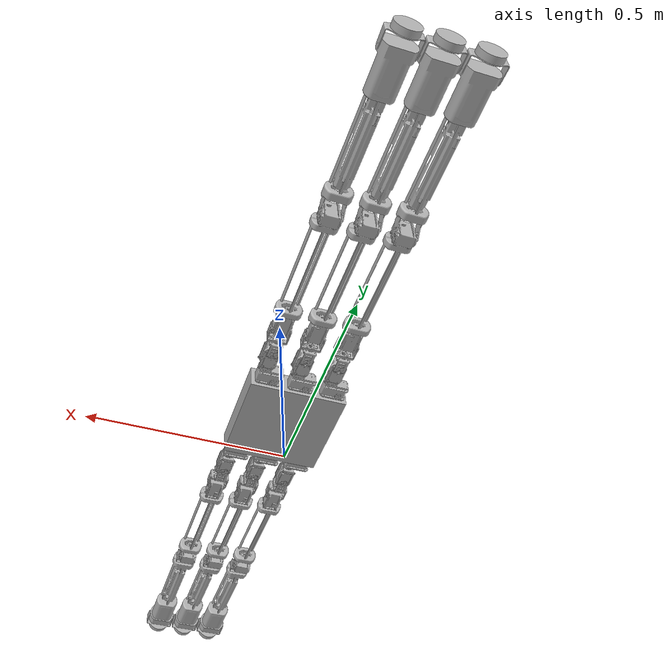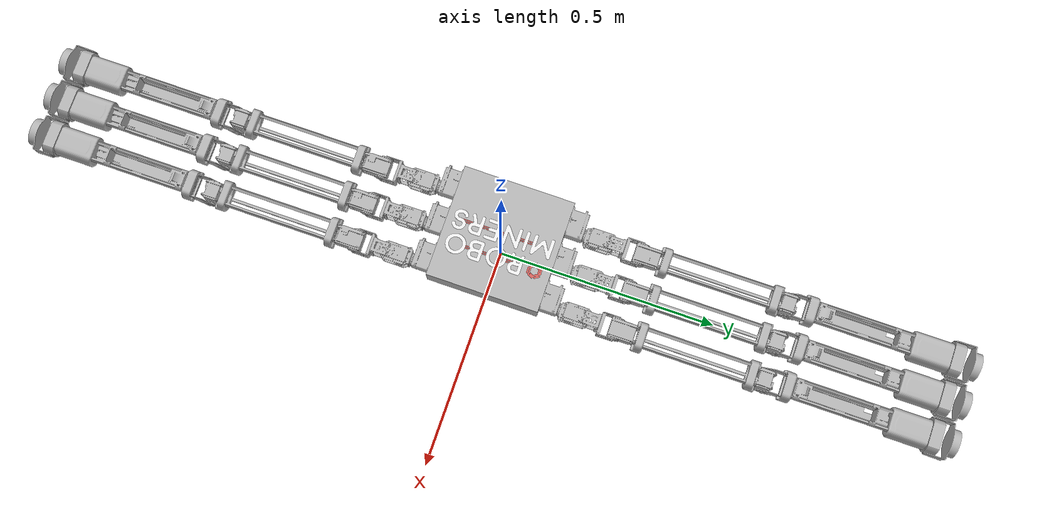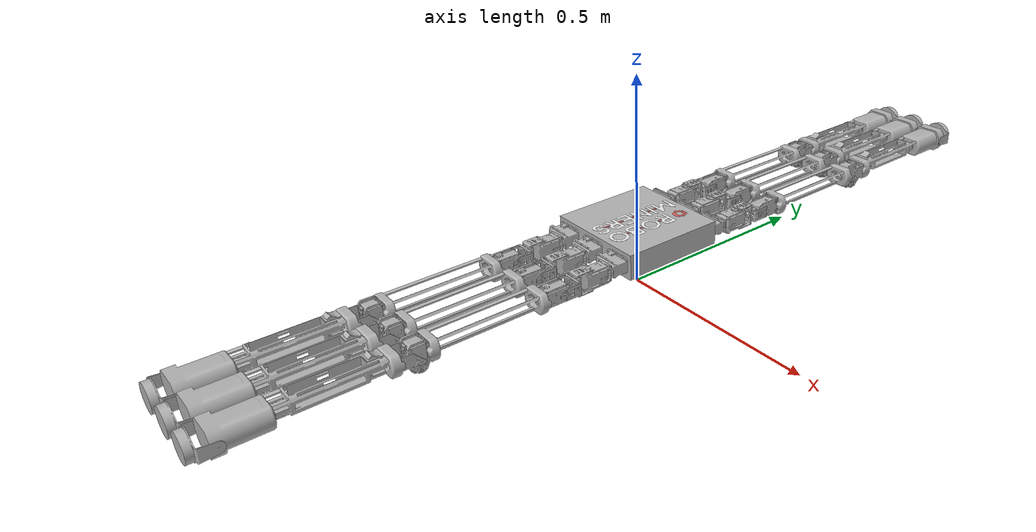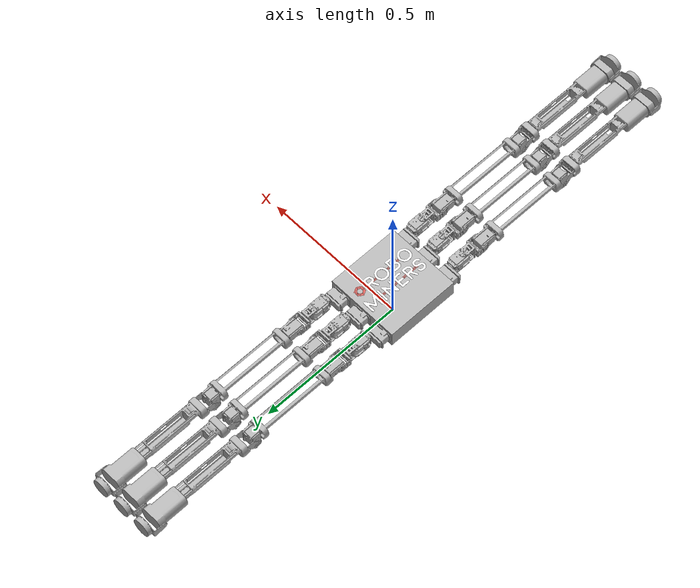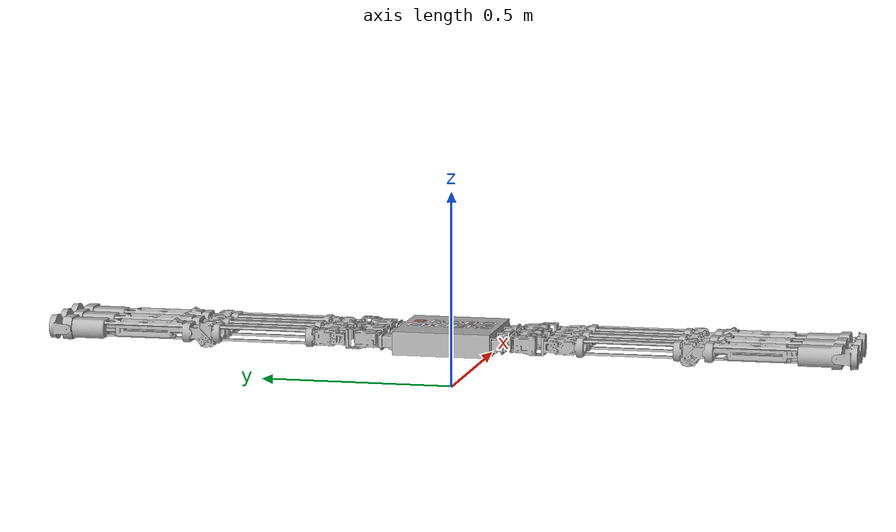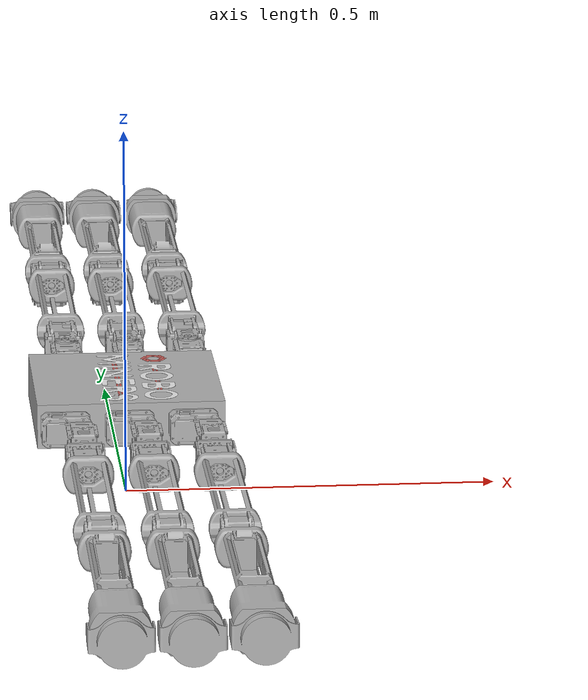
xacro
<?xml version="1.0" ?>
<robot name="robominer" xmlns:xacro="http://www.ros.org/wiki/xacro">

<xacro:include filename="$(find robominer_description)/urdf/materials.xacro" />
<!--xacro:include filename="$(find robominer_description)/urdf/macros.xacro" /-->
<xacro:include filename="$(find robominer_description)/urdf/pata.xacro" />
<xacro:include filename="$(find robominer_description)/urdf/cuerpo.xacro" />
<!--xacro:include filename="$(find robominer_description)/urdf/robominer.gazebo"/-->
<xacro:include filename="$(find robominer_description)/urdf/robominer_alt.gazebo"/>
<!--xacro:include filename="$(find robominer_description)/urdf/robominer.trans" /-->
	<!--robominer.trans no se incluye porque su codigo se ha pegado en pata.xacro-->

<!-- Used for fixing robot to Gazebo 'base_link (frame reference)' -->
<link name="base_link"/>

<!-- Body -->
<xacro:body parent="base_link" child="cuerpo"/>

<!--Legs-->
<xacro:pata lr="r" num="1"/>
<xacro:pata lr="r" num="2"/>
<xacro:pata lr="r" num="3"/>
<xacro:pata lr="l" num="1"/>
<xacro:pata lr="l" num="2"/>
<xacro:pata lr="l" num="3"/>

</robot>

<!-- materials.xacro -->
<robot name="robominer" xmlns:xacro="http://www.ros.org/wiki/xacro" >

<material name="silver">
  <color rgba="0.700 0.700 0.700 1.000"/>
</material>

<material name="logored">
  <color rgba="0.83 0.38 0.36 1.000"/>
</material>

</robot>

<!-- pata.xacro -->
<robot name="pata" xmlns:xacro="http://www.ros.org/wiki/xacro">

<xacro:property name="PI" value="3.1415926535897931"/>

<xacro:macro name="pata" params="lr num">
	<!--lr: izda o dcha; num: n de pata-->

<link name="Component1_${lr}_${num}">
  <inertial>
    <origin rpy="0 0 0" xyz="-0.016098173620451704 0.010194176532741607 0.0004098876929128892"/>
    <mass value="0.6779958201620729"/>
    <inertia ixx="0.000178" ixy="2e-06" ixz="-0.0" iyy="0.000263" iyz="0.0" izz="0.000323"/>
  </inertial>
  <visual>
    <origin rpy="0 0 0" xyz="0 0 0"/>
    <geometry>
	  <mesh filename="package://robominer_description/meshes/Component1_1.stl" scale="0.001 0.001 0.001"/>
    </geometry>
    <material name="silver"/>
  </visual>
  <collision>
    <origin rpy="0 0 0" xyz="0 0 0"/>
    <geometry>
	  <mesh filename="package://robominer_description/meshes/Component1_1.stl" scale="0.001 0.001 0.001"/>
	</geometry>
  </collision>
</link>

<link name="Component2_${lr}_${num}">
  <inertial>
    <origin rpy="0 0 0" xyz="-0.0006149315356479564 -0.0036869848715110638 3.2154364889409545e-06"/>
    <mass value="0.04057327410573066"/>
    <inertia ixx="6e-06" ixy="-0.0" ixz="-0.0" iyy="8e-06" iyz="0.0" izz="3e-06"/>
  </inertial>
  <visual>
    <origin rpy="0 0 0" xyz="-3.5e-05 0.013979 -0.00041"/>
    <geometry>
	  <mesh filename="package://robominer_description/meshes/Component2_1.stl" scale="0.001 0.001 0.001"/>
    </geometry>
    <material name="silver"/>
  </visual>
  <collision>
    <origin rpy="0 0 0" xyz="-3.5e-05 0.013979 -0.00041"/>
    <geometry>
	  <mesh filename="package://robominer_description/meshes/Component2_1.stl" scale="0.001 0.001 0.001"/>
	</geometry>
  </collision>
</link>

<link name="Component3_${lr}_${num}">
  <inertial>
    <origin rpy="0 0 0" xyz="-0.010999671935318412 -0.03017554708149813 -0.017082679282096242"/>
    <mass value="0.5890018112407169"/>
    <inertia ixx="0.000248" ixy="-0.0" ixz="0.0" iyy="0.000143" iyz="3e-06" izz="0.000207"/>
  </inertial>
  <visual>
    <origin rpy="0 0 0" xyz="-0.011035 0.023979 -0.017399"/>
    <geometry>
	  <mesh filename="package://robominer_description/meshes/Component3_1.stl" scale="0.001 0.001 0.001"/>
    </geometry>
    <material name="silver"/>
  </visual>
  <collision>
    <origin rpy="0 0 0" xyz="-0.011035 0.023979 -0.017399"/>
    <geometry>
	  <mesh filename="package://robominer_description/meshes/Component3_1.stl" scale="0.001 0.001 0.001"/>
	</geometry>
  </collision>
</link>

<link name="Component4_${lr}_${num}">
  <inertial>
    <origin rpy="0 0 0" xyz="3.8836028582182376e-07 -0.02564659243541706 -0.023500384459309957"/>
    <mass value="0.05208378573426527"/>
    <inertia ixx="2.7e-05" ixy="-0.0" ixz="-0.0" iyy="2.6e-05" iyz="-0.0" izz="1.3e-05"/>
  </inertial>
  <visual>
    <origin rpy="0 0 0" xyz="-3.5e-05 0.069279 -0.023899"/>
    <geometry>
	  <mesh filename="package://robominer_description/meshes/Component4_1.stl" scale="0.001 0.001 0.001"/>
    </geometry>
    <material name="silver"/>
  </visual>
  <collision>
    <origin rpy="0 0 0" xyz="-3.5e-05 0.069279 -0.023899"/>
    <geometry>
	  <mesh filename="package://robominer_description/meshes/Component4_1.stl" scale="0.001 0.001 0.001"/>
	</geometry>
  </collision>
</link>

<link name="Component5_${lr}_${num}">
  <inertial>
    <origin rpy="0 0 0" xyz="3.909747923353329e-07 -0.010354176598752526 -3.8552361335936723e-07"/>
    <mass value="0.05208378573425636"/>
    <inertia ixx="1.3e-05" ixy="-0.0" ixz="0.0" iyy="2.6e-05" iyz="0.0" izz="2.7e-05"/>
  </inertial>
  <visual>
    <origin rpy="0 0 0" xyz="-3.5e-05 0.105279 -0.000399"/>
    <geometry>
	  <mesh filename="package://robominer_description/meshes/Component5_1.stl" scale="0.001 0.001 0.001"/>
    </geometry>
    <material name="silver"/>
  </visual>
  <collision>
    <origin rpy="0 0 0" xyz="-3.5e-05 0.105279 -0.000399"/>
    <geometry>
	  <mesh filename="package://robominer_description/meshes/Component5_1.stl" scale="0.001 0.001 0.001"/>
	</geometry>
  </collision>
</link>

<link name="Component6_${lr}_${num}">
  <inertial>
    <origin rpy="0 0 0" xyz="-0.023581906416495643 -0.015125163189184582 -3.840657600155174e-07"/>
    <mass value="0.5890018112407189"/>
    <inertia ixx="0.000207" ixy="-3e-06" ixz="-0.0" iyy="0.000143" iyz="-0.0" izz="0.000248"/>
  </inertial>
  <visual>
    <origin rpy="0 0 0" xyz="-0.023535 0.141279 -0.000399"/>
    <geometry>
	  <mesh filename="package://robominer_description/meshes/Component6_1.stl" scale="0.001 0.001 0.001"/>
    </geometry>
    <material name="silver"/>
  </visual>
  <collision>
    <origin rpy="0 0 0" xyz="-0.023535 0.141279 -0.000399"/>
    <geometry>
	  <mesh filename="package://robominer_description/meshes/Component6_1.stl" scale="0.001 0.001 0.001"/>
	</geometry>
  </collision>
</link>

<link name="Component7_${lr}_${num}">
  <inertial>
    <origin rpy="0 0 0" xyz="0.016989115270362485 -0.13370034092163718 -0.009679411634955093"/>
    <mass value="0.8047904243141957"/>
    <inertia ixx="0.010228" ixy="0.0" ixz="-0.0" iyy="0.000455" iyz="0.0" izz="0.010342"/>
  </inertial>
  <visual>
    <origin rpy="0 0 0" xyz="0.016965 0.186579 -0.011399"/>
    <geometry>
	  <mesh filename="package://robominer_description/meshes/Component7_1.stl" scale="0.001 0.001 0.001"/>
    </geometry>
    <material name="silver"/>
  </visual>
  <collision>
    <origin rpy="0 0 0" xyz="0.016965 0.186579 -0.011399"/>
    <geometry>
	  <mesh filename="package://robominer_description/meshes/Component7_1.stl" scale="0.001 0.001 0.001"/>
	</geometry>
  </collision>
</link>

<link name="Component8_${lr}_${num}">
  <inertial>
    <origin rpy="0 0 0" xyz="-0.01704022511743504 -0.01730038580509191 -0.024875483679934324"/>
    <mass value="0.5890018112407238"/>
    <inertia ixx="0.000207" ixy="-0.0" ixz="3e-06" iyy="0.000248" iyz="-0.0" izz="0.000143"/>
  </inertial>
  <visual>
    <origin rpy="0 0 0" xyz="-0.017013 0.453979 -0.018399"/>
    <geometry>
	  <mesh filename="package://robominer_description/meshes/Component8_1.stl" scale="0.001 0.001 0.001"/>
    </geometry>
    <material name="silver"/>
  </visual>
  <collision>
    <origin rpy="0 0 0" xyz="-0.017013 0.453979 -0.018399"/>
    <geometry>
	  <mesh filename="package://robominer_description/meshes/Component8_1.stl" scale="0.001 0.001 0.001"/>
	</geometry>
  </collision>
</link>

<link name="Component9_${lr}_${num}">
  <inertial>
    <origin rpy="0 0 0" xyz="0.023499847445577277 -0.030303124512979562 0.018803242373294574"/>
    <mass value="0.07064606392588994"/>
    <inertia ixx="2.9e-05" ixy="0.0" ixz="0.0" iyy="4.1e-05" iyz="5e-06" izz="5.1e-05"/>
  </inertial>
  <visual>
    <origin rpy="0 0 0" xyz="0.021987 0.471279 0.021601"/>
    <geometry>
	  <mesh filename="package://robominer_description/meshes/Component9_1.stl" scale="0.001 0.001 0.001"/>
    </geometry>
    <material name="silver"/>
  </visual>
  <collision>
    <origin rpy="0 0 0" xyz="0.021987 0.471279 0.021601"/>
    <geometry>
	  <mesh filename="package://robominer_description/meshes/Component9_1.stl" scale="0.001 0.001 0.001"/>
	</geometry>
  </collision>
</link>

<link name="Component10_${lr}_${num}">
  <inertial>
    <origin rpy="0 0 0" xyz="-0.0001462881510200071 -0.07565896477109058 0.0034500995512585075"/>
    <mass value="1.0490517458913435"/>
    <inertia ixx="0.006442" ixy="-1.9e-05" ixz="-0.0" iyy="0.00043" iyz="-7.4e-05" izz="0.006454"/>
  </inertial>
  <visual>
    <origin rpy="0 0 0" xyz="-0.001513 0.519279 -0.000399"/>
    <geometry>
	  <mesh filename="package://robominer_description/meshes/Component10_1.stl" scale="0.001 0.001 0.001"/>
    </geometry>
    <material name="silver"/>
  </visual>
  <collision>
    <origin rpy="0 0 0" xyz="-0.001513 0.519279 -0.000399"/>
    <geometry>
	  <mesh filename="package://robominer_description/meshes/Component10_1.stl" scale="0.001 0.001 0.001"/>
	</geometry>
  </collision>
</link>

<link name="Component11_${lr}_${num}">
  <inertial>
    <origin rpy="0 0 0" xyz="-0.0198056930527322 -0.04596785880612919 -0.016515232602085917"/>
    <mass value="2.634371860361076"/>
    <inertia ixx="0.003233" ixy="-0.0" ixz="0.0" iyy="0.001378" iyz="1.3e-05" izz="0.003593"/>
  </inertial>
  <visual>
    <origin rpy="0 0 0" xyz="-0.021246 0.754979 -0.016997"/>
    <geometry>
	  <mesh filename="package://robominer_description/meshes/Component11_1.stl" scale="0.001 0.001 0.001"/>
    </geometry>
    <material name="silver"/>
  </visual>
  <collision>
    <origin rpy="0 0 0" xyz="-0.021246 0.754979 -0.016997"/>
    <geometry>
	  <mesh filename="package://robominer_description/meshes/Component11_1.stl" scale="0.001 0.001 0.001"/>
	</geometry>
  </collision>
</link>

<link name="Component12_${lr}_${num}">
  <inertial>
    <origin rpy="0 0 0" xyz="-0.03612166848566285 -0.03816330247780275 -3.670740474915864e-07"/>
    <mass value="0.4300735435640777"/>
    <!--mass value="2"/-->
    <inertia ixx="0.000136" ixy="0.0" ixz="0.0" iyy="0.000245" iyz="0.0" izz="0.000199"/>
  </inertial>
  <visual>
    <origin rpy="0 0 0" xyz="-0.037428 0.84017 -0.000763"/>
    <geometry>
	  <mesh filename="package://robominer_description/meshes/Component12_1.stl" scale="0.001 0.001 0.001"/>
    </geometry>
    <material name="silver"/>
  </visual>
  <collision>
    <origin rpy="0 0 0" xyz="-0.037428 0.84017 -0.000763"/>
    <geometry>
	  <mesh filename="package://robominer_description/meshes/Component12_1.stl" scale="0.001 0.001 0.001"/>
	</geometry>
  </collision>
</link>

	<!--Primera joint: cuerpo-pata-->
	<!--Por algun motivo el plugin nos daba mal la coordenada y de los origenes de esta joint y habido que estimarla a mano-->
<joint name="Rigid0_${lr}_${num}" type="fixed">
  <parent link="cuerpo"/>
  <child link="Component1_${lr}_${num}"/>
    	<xacro:if value="${lr == 'r'}">
			<xacro:if value="${num == 1}">
  				<!--origin rpy="0 0 0" xyz="0.100325 -0.11755 0.03"/-->
  				<origin rpy="0 0 0" xyz="0.100325 -0.151 0.03"/>
			</xacro:if>
			<xacro:if value="${num == 2}">
 				<!--origin rpy="0 0 0" xyz="0.015325 -0.11755 0.03"/-->
 				<origin rpy="0 0 0" xyz="0.015325 -0.151 0.03"/>
			</xacro:if>
			<xacro:if value="${num == 3}">
  				<!--origin rpy="0 0 0" xyz="-0.069675 -0.11755 0.03"/-->
  				<origin rpy="0 0 0" xyz="-0.069675 -0.151 0.03"/>
			</xacro:if>
    	</xacro:if>
    	<xacro:if value="${lr == 'l'}">
			<xacro:if value="${num == 1}">
  				<!--origin rpy="${PI} 0 0" xyz="0.100325 0.11755 0.03"/-->
  				<origin rpy="${PI} 0 0" xyz="0.100325 0.151 0.03"/>
			</xacro:if>
			<xacro:if value="${num == 2}">
  				<!--origin rpy="${PI} 0 0" xyz="0.015325 0.11755 0.03"/-->
  				<origin rpy="${PI} 0 0" xyz="0.015325 0.151 0.03"/>
			</xacro:if>
			<xacro:if value="${num == 3}">
  				<!--origin rpy="${PI} 0 0" xyz="-0.069675 0.11755 0.03"/-->
  				<origin rpy="${PI} 0 0" xyz="-0.069675 0.151 0.03"/>
			</xacro:if>
    	</xacro:if>
</joint>

<joint name="Rigid1_${lr}_${num}" type="fixed">
  <xacro:if value="${lr == 'r'}">
 	  <origin rpy="0 0 0" xyz="3.5e-05 -0.013979 0.00041"/>
  </xacro:if>
  <xacro:if value="${lr == 'l'}">
      <origin rpy="0 ${PI} 0" xyz="3.5e-05 -0.013979 0.00041"/>
  </xacro:if>
  <parent link="Component1_${lr}_${num}"/>
  <child link="Component2_${lr}_${num}"/>
</joint>

<joint name="Rigid2_${lr}_${num}" type="fixed">
  <origin rpy="0 0 0" xyz="0.011 -0.01 0.016989"/>
  <parent link="Component2_${lr}_${num}"/>
  <child link="Component3_${lr}_${num}"/>
</joint>

<joint name="Rev3_${lr}_${num}" type="revolute">
  <origin rpy="0 0 0" xyz="-0.011 -0.0453 0.0065"/>
  <parent link="Component3_${lr}_${num}"/>
  <child link="Component4_${lr}_${num}"/>
  <axis xyz="-0.0 -0.0 1.0"/>
  <dynamics damping=".1" friction="1.0" />
  <limit effort="100" lower="-1.919862" upper="1.919862" velocity=".75"/>
  <!--safety_controller soft_lower_limit="-1.919862" soft_upper_limit="1.919862" k_velocity="1" /-->
</joint>

<joint name="Rigid4_${lr}_${num}" type="fixed">
  <origin rpy="0 0 0" xyz="0.0 -0.036 -0.0235"/>
  <parent link="Component4_${lr}_${num}"/>
  <child link="Component5_${lr}_${num}"/>
</joint>

<joint name="Rev5_${lr}_${num}" type="revolute">
  <origin rpy="0 0 0" xyz="0.0235 -0.036 0.0"/>
  <parent link="Component5_${lr}_${num}"/>
  <child link="Component6_${lr}_${num}"/>
  <axis xyz="1.0 0.0 -0.0"/>
  <dynamics damping=".1" friction="1.0" />
  <limit effort="100" lower="-1.919862" upper="1.919862" velocity=".75"/>
  <!--safety_controller soft_lower_limit="-1.919862" soft_upper_limit="1.919862" k_velocity="1" /-->
</joint>

<joint name="Rigid6_${lr}_${num}" type="fixed">
  <origin rpy="0 0 0" xyz="-0.0405 -0.0453 0.011"/>
  <parent link="Component6_${lr}_${num}"/>
  <child link="Component7_${lr}_${num}"/>
</joint>

<joint name="Rigid7_${lr}_${num}" type="fixed">
  <origin rpy="0 0 0" xyz="0.033978 -0.2674 0.007"/>
  <parent link="Component7_${lr}_${num}"/>
  <child link="Component8_${lr}_${num}"/>
</joint>

<joint name="Rev8_${lr}_${num}" type="revolute">
  <origin rpy="0 0 0" xyz="-0.039 -0.0173 -0.04"/>
  <parent link="Component8_${lr}_${num}"/>
  <child link="Component9_${lr}_${num}"/>
  <axis xyz="1.0 0.0 0.0"/>
  <dynamics damping=".1" friction="1.0" />
  <limit effort="100" lower="-0.785398" upper="3.141593" velocity=".75"/>
  <!--safety_controller soft_lower_limit="-0.785398" soft_upper_limit="3.141593" k_velocity="1" /-->
</joint>

<joint name="Rigid9_${lr}_${num}" type="fixed">
  <origin rpy="0 0 0" xyz="0.0235 -0.048 0.022"/>
  <parent link="Component9_${lr}_${num}"/>
  <child link="Component10_${lr}_${num}"/>
</joint>

<joint name="Rigid10_${lr}_${num}" type="fixed">
  <origin rpy="0 0 0" xyz="0.019733 -0.2357 0.016598"/>
  <parent link="Component10_${lr}_${num}"/>
  <child link="Component11_${lr}_${num}"/>
</joint>

<joint name="Rev11_${lr}_${num}" type="revolute">
  <origin rpy="0 0 0" xyz="0.016182 -0.085191 -0.016234"/>
  <parent link="Component11_${lr}_${num}"/>
  <child link="Component12_${lr}_${num}"/>
  <axis xyz="1.0 -0.0 0.0"/>
  <dynamics damping=".1" friction="1.0" />
  <limit effort="100" lower="-1.570796" upper="1.570796" velocity=".75"/>
  <!--safety_controller soft_lower_limit="-1.570796" soft_upper_limit="1.570796" k_velocity="1" /-->
</joint>

	<!--Transmisiones-->

<transmission name="Rev3_tran_${lr}_${num}">
  <type>transmission_interface/SimpleTransmission</type>
  <joint name="Rev3_${lr}_${num}">
    <hardwareInterface>hardware_interface/EffortJointInterface</hardwareInterface>
  </joint>
  <actuator name="Rev3_actr_${lr}_${num}">
    <hardwareInterface>hardware_interface/EffortJointInterface</hardwareInterface>
    <mechanicalReduction>1</mechanicalReduction>
  </actuator>
</transmission>

<transmission name="Rev5_tran_${lr}_${num}">
  <type>transmission_interface/SimpleTransmission</type>
  <joint name="Rev5_${lr}_${num}">
    <hardwareInterface>hardware_interface/EffortJointInterface</hardwareInterface>
  </joint>
  <actuator name="Rev5_actr_${lr}_${num}">
    <hardwareInterface>hardware_interface/EffortJointInterface</hardwareInterface>
    <mechanicalReduction>1</mechanicalReduction>
  </actuator>
</transmission>

<transmission name="Rev8_tran_${lr}_${num}">
  <type>transmission_interface/SimpleTransmission</type>
  <joint name="Rev8_${lr}_${num}">
    <hardwareInterface>hardware_interface/EffortJointInterface</hardwareInterface>
  </joint>
  <actuator name="Rev8_actr_${lr}_${num}">
    <hardwareInterface>hardware_interface/EffortJointInterface</hardwareInterface>
    <mechanicalReduction>1</mechanicalReduction>
  </actuator>
</transmission>

<transmission name="Rev11_tran_${lr}_${num}">
  <type>transmission_interface/SimpleTransmission</type>
  <joint name="Rev11_${lr}_${num}">
    <hardwareInterface>hardware_interface/EffortJointInterface</hardwareInterface>
  </joint>
  <actuator name="Rev11_actr_${lr}_${num}">
    <hardwareInterface>hardware_interface/EffortJointInterface</hardwareInterface>
    <mechanicalReduction>1</mechanicalReduction>
  </actuator>
</transmission>

	<!--Sensores-->

<!-- Enable the Joint Feedback -->
<gazebo reference="Rev3_${lr}_${num}">
  <provideFeedback>true</provideFeedback>
</gazebo>
<!-- The ft_sensor plugin -->
<gazebo>
  <plugin name="ft_sensor" filename="libgazebo_ros_ft_sensor.so">
    <robotNamespace>/robominer</robotNamespace>
	<updateRate>100.0</updateRate>
	<topicName>Rev3_${lr}_${num}_ft_sensor_topic</topicName>
	<jointName>Rev3_${lr}_${num}</jointName>
  </plugin>
</gazebo>

<!-- Enable the Joint Feedback -->
<gazebo reference="Rev5_${lr}_${num}">
<provideFeedback>true</provideFeedback>
</gazebo>
<!-- The ft_sensor plugin -->
<gazebo>
<plugin name="ft_sensor" filename="libgazebo_ros_ft_sensor.so">
  <robotNamespace>/robominer</robotNamespace>
<updateRate>100.0</updateRate>
<topicName>Rev5_${lr}_${num}_ft_sensor_topic</topicName>
<jointName>Rev5_${lr}_${num}</jointName>
</plugin>
</gazebo>

<!-- Enable the Joint Feedback -->
<gazebo reference="Rev8_${lr}_${num}">
<provideFeedback>true</provideFeedback>
</gazebo>
<!-- The ft_sensor plugin -->
<gazebo>
<plugin name="ft_sensor" filename="libgazebo_ros_ft_sensor.so">
  <robotNamespace>/robominer</robotNamespace>
<updateRate>100.0</updateRate>
<topicName>Rev8_${lr}_${num}_ft_sensor_topic</topicName>
<jointName>Rev8_${lr}_${num}</jointName>
</plugin>
</gazebo>

<!-- Enable the Joint Feedback -->
<gazebo reference="Rev11_${lr}_${num}">
<provideFeedback>true</provideFeedback>
</gazebo>
<!-- The ft_sensor plugin -->
<gazebo>
<plugin name="ft_sensor" filename="libgazebo_ros_ft_sensor.so">
  <robotNamespace>/robominer</robotNamespace>
<updateRate>100.0</updateRate>
<topicName>Rev11_${lr}_${num}_ft_sensor_topic</topicName>
<jointName>Rev11_${lr}_${num}</jointName>
</plugin>
</gazebo>

</xacro:macro>

</robot>

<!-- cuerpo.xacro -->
<robot name="cuerpo" xmlns:xacro="http://www.ros.org/wiki/xacro">

<link name="cuerpo">
  <inertial>
	<origin rpy="0 0 0" xyz="1.2607010642475455e-06 -1.9705023201073385e-17 0.030000000000039998"/>
	<!--mass value="28.985638173838137"/-->
	<mass value="10"/>
	<!--mass value="2"/-->
	<inertia ixx="0.155393" ixy="-0.0" ixz="-0.0" iyy="0.159826" iyz="-0.0" izz="0.297615"/>
  </inertial>
  <visual>
	<origin rpy="0 0 0" xyz="0 0 0"/>
	<geometry>
	  <mesh filename="package://robominer_description/meshes/cuerpo.stl" scale="0.001 0.001 0.001"/>
	</geometry>
	<material name="silver"/>
  </visual>
  <collision>
	<origin rpy="0 0 0" xyz="0 0 0"/>
	<geometry>
	  <mesh filename="package://robominer_description/meshes/cuerpo.stl" scale="0.001 0.001 0.001"/>
	</geometry>
  </collision>
</link>

<link name="logo1">
  <visual>
    <origin rpy="0 0 0" xyz="0 0 0"/>
    <geometry>
      <mesh filename="package://robominer_description/meshes/logo1.stl" scale="0.001 0.001 0.001"/>
    </geometry>
    <material name="logored"/>
  </visual>
</link>

<link name="logo2">
  <visual>
    <origin rpy="0 0 0" xyz="0 0 0"/>
    <geometry>
      <mesh filename="package://robominer_description/meshes/logo2.stl" scale="0.001 0.001 0.001"/>
    </geometry>
    <material name="white"/>
  </visual>
</link>

<link name="ladrilloslogo">
  <visual>
    <origin rpy="0 0 0" xyz="0 0 0"/>
    <geometry>
      <mesh filename="package://robominer_description/meshes/ladrilloslogo.stl" scale="0.001 0.001 0.001"/>
    </geometry>
    <material name="logored"/>
  </visual>
</link>

<joint name="cuerpo_logo1" type="fixed">
	<origin rpy="0 0 0.5236" xyz="-0.006 0.105 0.0551"/>
	<parent link="cuerpo"/>
	<child link="logo1"/>
</joint>

<joint name="cuerpo_logo2" type="fixed">
	<origin rpy="0 0 -1.5707" xyz="0.08 0.125 0.0552"/>
	<parent link="cuerpo"/>
	<child link="logo2"/>
</joint>

<joint name="cuerpo_ladrillos" type="fixed">
	<origin rpy="0 0 -1.5707" xyz="0.08 0.125 0.0551"/>
	<parent link="cuerpo"/>
	<child link="ladrilloslogo"/>
</joint>

<xacro:macro name="body" params="parent child">
	<joint name="fixed" type="fixed">
		<origin rpy="0 0 0" xyz="0 0 0.1"/>
		<parent link="${parent}"/>
		<child link="${child}"/>
	</joint>
</xacro:macro>

</robot>

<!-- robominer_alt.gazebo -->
<!--Archivo alternartivo con el que trataba de reducir el tembleque (sin exito)-->

<robot name="robominer" xmlns:xacro="http://www.ros.org/wiki/xacro" >

<xacro:property name="body_color" value="Gazebo/Silver" />
<xacro:property name="right_colour" value="Gazebo/Green" />
<xacro:property name="left_colour" value="Gazebo/Red" />

<gazebo>
  <plugin filename="libgazebo_ros_control.so" name="control">
      <robotNamespace>/robominer</robotNamespace>
  </plugin>
</gazebo>

<gazebo>
  <plugin filename="librobominer_fault_injection_plugin.so" name="robominer_fault_injection_plugin">
      <robotNamespace>/robominer</robotNamespace>
  </plugin>
</gazebo>

<gazebo reference="cuerpo">
  <material>${body_color}</material>
  <implicitSpringDamper>true</implicitSpringDamper>
  <mu1>0.8</mu1>
  <mu2>0.8</mu2>
  <kp>1000000.0</kp>
  <kd>1.0</kd>
  <maxVel>0</maxVel>
  <minDepth>0.001</minDepth>
  <selfCollide>true</selfCollide>
  <gravity>true</gravity>
</gazebo>

	<!--Pata r1-->

<gazebo reference="Component1_r_1">
  <material>${right_colour}</material>
  <implicitSpringDamper>true</implicitSpringDamper>
  <mu1>0.8</mu1>
  <mu2>0.8</mu2>
  <kp>1000000.0</kp>
  <kd>1.0</kd>
  <maxVel>0</maxVel>
  <minDepth>0.001</minDepth>
  <selfCollide>true</selfCollide>
</gazebo>

<gazebo reference="Component2_r_1">
  <material>${body_color}</material>
  <implicitSpringDamper>true</implicitSpringDamper>
  <mu1>0.8</mu1>
  <mu2>0.8</mu2>
  <kp>1000000.0</kp>
  <kd>1.0</kd>
  <maxVel>0</maxVel>
  <minDepth>0.001</minDepth>
  <selfCollide>true</selfCollide>
</gazebo>

<gazebo reference="Component3_r_1">
  <material>${body_color}</material>
  <implicitSpringDamper>true</implicitSpringDamper>
  <mu1>0.8</mu1>
  <mu2>0.8</mu2>
  <kp>1000000.0</kp>
  <kd>1.0</kd>
  <maxVel>0</maxVel>
  <minDepth>0.001</minDepth>
  <selfCollide>true</selfCollide>
</gazebo>

<gazebo reference="Component4_r_1">
  <material>${body_color}</material>
  <implicitSpringDamper>true</implicitSpringDamper>
  <mu1>0.8</mu1>
  <mu2>0.8</mu2>
  <kp>1000000.0</kp>
  <kd>1.0</kd>
  <maxVel>0</maxVel>
  <minDepth>0.001</minDepth>
  <selfCollide>true</selfCollide>
</gazebo>

<gazebo reference="Component5_r_1">
  <material>${body_color}</material>
  <implicitSpringDamper>true</implicitSpringDamper>
  <mu1>0.8</mu1>
  <mu2>0.8</mu2>
  <kp>1000000.0</kp>
  <kd>1.0</kd>
  <maxVel>0</maxVel>
  <minDepth>0.001</minDepth>
  <selfCollide>true</selfCollide>
</gazebo>

<gazebo reference="Component6_r_1">
  <material>${body_color}</material>
  <implicitSpringDamper>true</implicitSpringDamper>
  <mu1>0.8</mu1>
  <mu2>0.8</mu2>
  <kp>1000000.0</kp>
  <kd>1.0</kd>
  <maxVel>0</maxVel>
  <minDepth>0.001</minDepth>
  <selfCollide>true</selfCollide>
</gazebo>

<gazebo reference="Component7_r_1">
  <material>${body_color}</material>
  <implicitSpringDamper>true</implicitSpringDamper>
  <mu1>0.8</mu1>
  <mu2>0.8</mu2>
  <kp>1000000.0</kp>
  <kd>1.0</kd>
  <maxVel>0</maxVel>
  <minDepth>0.001</minDepth>
  <selfCollide>true</selfCollide>
</gazebo>

<gazebo reference="Component8_r_1">
  <material>${body_color}</material>
  <implicitSpringDamper>true</implicitSpringDamper>
  <mu1>0.8</mu1>
  <mu2>0.8</mu2>
  <kp>1000000.0</kp>
  <kd>1.0</kd>
  <maxVel>0</maxVel>
  <minDepth>0.001</minDepth>
  <selfCollide>true</selfCollide>
</gazebo>

<gazebo reference="Component9_r_1">
  <material>${body_color}</material>
  <implicitSpringDamper>true</implicitSpringDamper>
  <mu1>0.8</mu1>
  <mu2>0.8</mu2>
  <kp>1000000.0</kp>
  <kd>1.0</kd>
  <maxVel>0</maxVel>
  <minDepth>0.001</minDepth>
  <selfCollide>true</selfCollide>
</gazebo>

<gazebo reference="Component10_r_1">
  <material>${body_color}</material>
  <implicitSpringDamper>true</implicitSpringDamper>
  <mu1>0.8</mu1>
  <mu2>0.8</mu2>
  <kp>1000000.0</kp>
  <kd>1.0</kd>
  <maxVel>0</maxVel>
  <minDepth>0.001</minDepth>
  <selfCollide>true</selfCollide>
</gazebo>

<gazebo reference="Component11_r_1">
  <material>${body_color}</material>
  <implicitSpringDamper>true</implicitSpringDamper>
  <mu1>0.8</mu1>
  <mu2>0.8</mu2>
  <kp>1000000.0</kp>
  <kd>1.0</kd>
  <maxVel>0</maxVel>
  <minDepth>0.001</minDepth>
  <selfCollide>true</selfCollide>
</gazebo>

<gazebo reference="Component12_r_1">
  <material>${body_color}</material>
  <implicitSpringDamper>true</implicitSpringDamper>
  <mu1>0.8</mu1>
  <mu2>0.8</mu2>
  <kp>1000000.0</kp>
  <kd>1.0</kd>
  <maxVel>0</maxVel>
  <minDepth>0.001</minDepth>
  <selfCollide>true</selfCollide>
</gazebo>

	<!--Pata r2-->

<gazebo reference="Component1_r_2">
  <material>${body_color}</material>
  <implicitSpringDamper>true</implicitSpringDamper>
  <mu1>0.8</mu1>
  <mu2>0.8</mu2>
  <kp>1000000.0</kp>
  <kd>1.0</kd>
  <maxVel>0</maxVel>
  <minDepth>0.001</minDepth>
  <selfCollide>true</selfCollide>
</gazebo>

<gazebo reference="Component2_r_2">
  <material>${body_color}</material>
  <implicitSpringDamper>true</implicitSpringDamper>
  <mu1>0.8</mu1>
  <mu2>0.8</mu2>
  <kp>1000000.0</kp>
  <kd>1.0</kd>
  <maxVel>0</maxVel>
  <minDepth>0.001</minDepth>
  <selfCollide>true</selfCollide>
</gazebo>

<gazebo reference="Component3_r_2">
  <material>${body_color}</material>
  <implicitSpringDamper>true</implicitSpringDamper>
  <mu1>0.8</mu1>
  <mu2>0.8</mu2>
  <kp>1000000.0</kp>
  <kd>1.0</kd>
  <maxVel>0</maxVel>
  <minDepth>0.001</minDepth>
  <selfCollide>true</selfCollide>
</gazebo>

<gazebo reference="Component4_r_2">
  <material>${body_color}</material>
  <implicitSpringDamper>true</implicitSpringDamper>
  <mu1>0.8</mu1>
  <mu2>0.8</mu2>
  <kp>1000000.0</kp>
  <kd>1.0</kd>
  <maxVel>0</maxVel>
  <minDepth>0.001</minDepth>
  <selfCollide>true</selfCollide>
</gazebo>

<gazebo reference="Component5_r_2">
  <material>${body_color}</material>
  <implicitSpringDamper>true</implicitSpringDamper>
  <mu1>0.8</mu1>
  <mu2>0.8</mu2>
  <kp>1000000.0</kp>
  <kd>1.0</kd>
  <maxVel>0</maxVel>
  <minDepth>0.001</minDepth>
  <selfCollide>true</selfCollide>
</gazebo>

<gazebo reference="Component6_r_2">
  <material>${body_color}</material>
  <implicitSpringDamper>true</implicitSpringDamper>
  <mu1>0.8</mu1>
  <mu2>0.8</mu2>
  <kp>1000000.0</kp>
  <kd>1.0</kd>
  <maxVel>0</maxVel>
  <minDepth>0.001</minDepth>
  <selfCollide>true</selfCollide>
</gazebo>

<gazebo reference="Component7_r_2">
  <material>${body_color}</material>
  <implicitSpringDamper>true</implicitSpringDamper>
  <mu1>0.8</mu1>
  <mu2>0.8</mu2>
  <kp>1000000.0</kp>
  <kd>1.0</kd>
  <maxVel>0</maxVel>
  <minDepth>0.001</minDepth>
  <selfCollide>true</selfCollide>
</gazebo>

<gazebo reference="Component8_r_2">
  <material>${body_color}</material>
  <implicitSpringDamper>true</implicitSpringDamper>
  <mu1>0.8</mu1>
  <mu2>0.8</mu2>
  <kp>1000000.0</kp>
  <kd>1.0</kd>
  <maxVel>0</maxVel>
  <minDepth>0.001</minDepth>
  <selfCollide>true</selfCollide>
</gazebo>

<gazebo reference="Component9_r_2">
  <material>${body_color}</material>
  <implicitSpringDamper>true</implicitSpringDamper>
  <mu1>0.8</mu1>
  <mu2>0.8</mu2>
  <kp>1000000.0</kp>
  <kd>1.0</kd>
  <maxVel>0</maxVel>
  <minDepth>0.001</minDepth>
  <selfCollide>true</selfCollide>
</gazebo>

<gazebo reference="Component10_r_2">
  <material>${body_color}</material>
  <implicitSpringDamper>true</implicitSpringDamper>
  <mu1>0.8</mu1>
  <mu2>0.8</mu2>
  <kp>1000000.0</kp>
  <kd>1.0</kd>
  <maxVel>0</maxVel>
  <minDepth>0.001</minDepth>
  <selfCollide>true</selfCollide>
</gazebo>

<gazebo reference="Component11_r_2">
  <material>${body_color}</material>
  <implicitSpringDamper>true</implicitSpringDamper>
  <mu1>0.8</mu1>
  <mu2>0.8</mu2>
  <kp>1000000.0</kp>
  <kd>1.0</kd>
  <maxVel>0</maxVel>
  <minDepth>0.001</minDepth>
  <selfCollide>true</selfCollide>
</gazebo>

<gazebo reference="Component12_r_2">
  <material>${body_color}</material>
  <implicitSpringDamper>true</implicitSpringDamper>
  <mu1>0.8</mu1>
  <mu2>0.8</mu2>
  <kp>1000000.0</kp>
  <kd>1.0</kd>
  <maxVel>0</maxVel>
  <minDepth>0.001</minDepth>
  <selfCollide>true</selfCollide>
</gazebo>

	<!--Pata r3-->

<gazebo reference="Component1_r_3">
  <material>${body_color}</material>
  <implicitSpringDamper>true</implicitSpringDamper>
  <mu1>0.8</mu1>
  <mu2>0.8</mu2>
  <kp>1000000.0</kp>
  <kd>1.0</kd>
  <maxVel>0</maxVel>
  <minDepth>0.001</minDepth>
  <selfCollide>true</selfCollide>
</gazebo>

<gazebo reference="Component2_r_3">
  <material>${body_color}</material>
  <implicitSpringDamper>true</implicitSpringDamper>
  <mu1>0.8</mu1>
  <mu2>0.8</mu2>
  <kp>1000000.0</kp>
  <kd>1.0</kd>
  <maxVel>0</maxVel>
  <minDepth>0.001</minDepth>
  <selfCollide>true</selfCollide>
</gazebo>

<gazebo reference="Component3_r_3">
  <material>${body_color}</material>
  <implicitSpringDamper>true</implicitSpringDamper>
  <mu1>0.8</mu1>
  <mu2>0.8</mu2>
  <kp>1000000.0</kp>
  <kd>1.0</kd>
  <maxVel>0</maxVel>
  <minDepth>0.001</minDepth>
  <selfCollide>true</selfCollide>
</gazebo>

<gazebo reference="Component4_r_3">
  <material>${body_color}</material>
  <implicitSpringDamper>true</implicitSpringDamper>
  <mu1>0.8</mu1>
  <mu2>0.8</mu2>
  <kp>1000000.0</kp>
  <kd>1.0</kd>
  <maxVel>0</maxVel>
  <minDepth>0.001</minDepth>
  <selfCollide>true</selfCollide>
</gazebo>

<gazebo reference="Component5_r_3">
  <material>${body_color}</material>
  <implicitSpringDamper>true</implicitSpringDamper>
  <mu1>0.8</mu1>
  <mu2>0.8</mu2>
  <kp>1000000.0</kp>
  <kd>1.0</kd>
  <maxVel>0</maxVel>
  <minDepth>0.001</minDepth>
  <selfCollide>true</selfCollide>
</gazebo>

<gazebo reference="Component6_r_3">
  <material>${body_color}</material>
  <implicitSpringDamper>true</implicitSpringDamper>
  <mu1>0.8</mu1>
  <mu2>0.8</mu2>
  <kp>1000000.0</kp>
  <kd>1.0</kd>
  <maxVel>0</maxVel>
  <minDepth>0.001</minDepth>
  <selfCollide>true</selfCollide>
</gazebo>

<gazebo reference="Component7_r_3">
  <material>${body_color}</material>
  <implicitSpringDamper>true</implicitSpringDamper>
  <mu1>0.8</mu1>
  <mu2>0.8</mu2>
  <kp>1000000.0</kp>
  <kd>1.0</kd>
  <maxVel>0</maxVel>
  <minDepth>0.001</minDepth>
  <selfCollide>true</selfCollide>
</gazebo>

<gazebo reference="Component8_r_3">
  <material>${body_color}</material>
  <implicitSpringDamper>true</implicitSpringDamper>
  <mu1>0.8</mu1>
  <mu2>0.8</mu2>
  <kp>1000000.0</kp>
  <kd>1.0</kd>
  <maxVel>0</maxVel>
  <minDepth>0.001</minDepth>
  <selfCollide>true</selfCollide>
</gazebo>

<gazebo reference="Component9_r_3">
  <material>${body_color}</material>
  <implicitSpringDamper>true</implicitSpringDamper>
  <mu1>0.8</mu1>
  <mu2>0.8</mu2>
  <kp>1000000.0</kp>
  <kd>1.0</kd>
  <maxVel>0</maxVel>
  <minDepth>0.001</minDepth>
  <selfCollide>true</selfCollide>
</gazebo>

<gazebo reference="Component10_r_3">
  <material>${body_color}</material>
  <implicitSpringDamper>true</implicitSpringDamper>
  <mu1>0.8</mu1>
  <mu2>0.8</mu2>
  <kp>1000000.0</kp>
  <kd>1.0</kd>
  <maxVel>0</maxVel>
  <minDepth>0.001</minDepth>
  <selfCollide>true</selfCollide>
</gazebo>

<gazebo reference="Component11_r_3">
  <material>${body_color}</material>
  <implicitSpringDamper>true</implicitSpringDamper>
  <mu1>0.8</mu1>
  <mu2>0.8</mu2>
  <kp>1000000.0</kp>
  <kd>1.0</kd>
  <maxVel>0</maxVel>
  <minDepth>0.001</minDepth>
  <selfCollide>true</selfCollide>
</gazebo>

<gazebo reference="Component12_r_3">
  <material>${body_color}</material>
  <implicitSpringDamper>true</implicitSpringDamper>
  <mu1>0.8</mu1>
  <mu2>0.8</mu2>
  <kp>1000000.0</kp>
  <kd>1.0</kd>
  <maxVel>0</maxVel>
  <minDepth>0.001</minDepth>
  <selfCollide>true</selfCollide>
</gazebo>

	<!--Pata l1-->

<gazebo reference="Component1_l_1">
  <material>${left_colour}</material>
  <implicitSpringDamper>true</implicitSpringDamper>
  <mu1>0.8</mu1>
  <mu2>0.8</mu2>
  <kp>1000000.0</kp>
  <kd>1.0</kd>
  <maxVel>0</maxVel>
  <minDepth>0.001</minDepth>
  <selfCollide>true</selfCollide>
</gazebo>

<gazebo reference="Component2_l_1">
  <material>${body_color}</material>
  <implicitSpringDamper>true</implicitSpringDamper>
  <mu1>0.8</mu1>
  <mu2>0.8</mu2>
  <kp>1000000.0</kp>
  <kd>1.0</kd>
  <maxVel>0</maxVel>
  <minDepth>0.001</minDepth>
  <selfCollide>true</selfCollide>
</gazebo>

<gazebo reference="Component3_l_1">
  <material>${body_color}</material>
  <implicitSpringDamper>true</implicitSpringDamper>
  <mu1>0.8</mu1>
  <mu2>0.8</mu2>
  <kp>1000000.0</kp>
  <kd>1.0</kd>
  <maxVel>0</maxVel>
  <minDepth>0.001</minDepth>
  <selfCollide>true</selfCollide>
</gazebo>

<gazebo reference="Component4_l_1">
  <material>${body_color}</material>
  <implicitSpringDamper>true</implicitSpringDamper>
  <mu1>0.8</mu1>
  <mu2>0.8</mu2>
  <kp>1000000.0</kp>
  <kd>1.0</kd>
  <maxVel>0</maxVel>
  <minDepth>0.001</minDepth>
  <selfCollide>true</selfCollide>
</gazebo>

<gazebo reference="Component5_l_1">
  <material>${body_color}</material>
  <implicitSpringDamper>true</implicitSpringDamper>
  <mu1>0.8</mu1>
  <mu2>0.8</mu2>
  <kp>1000000.0</kp>
  <kd>1.0</kd>
  <maxVel>0</maxVel>
  <minDepth>0.001</minDepth>
  <selfCollide>true</selfCollide>
</gazebo>

<gazebo reference="Component6_l_1">
  <material>${body_color}</material>
  <implicitSpringDamper>true</implicitSpringDamper>
  <mu1>0.8</mu1>
  <mu2>0.8</mu2>
  <kp>1000000.0</kp>
  <kd>1.0</kd>
  <maxVel>0</maxVel>
  <minDepth>0.001</minDepth>
  <selfCollide>true</selfCollide>
</gazebo>

<gazebo reference="Component7_l_1">
  <material>${body_color}</material>
  <implicitSpringDamper>true</implicitSpringDamper>
  <mu1>0.8</mu1>
  <mu2>0.8</mu2>
  <kp>1000000.0</kp>
  <kd>1.0</kd>
  <maxVel>0</maxVel>
  <minDepth>0.001</minDepth>
  <selfCollide>true</selfCollide>
</gazebo>

<gazebo reference="Component8_l_1">
  <material>${body_color}</material>
  <implicitSpringDamper>true</implicitSpringDamper>
  <mu1>0.8</mu1>
  <mu2>0.8</mu2>
  <kp>1000000.0</kp>
  <kd>1.0</kd>
  <maxVel>0</maxVel>
  <minDepth>0.001</minDepth>
  <selfCollide>true</selfCollide>
</gazebo>

<gazebo reference="Component9_l_1">
  <material>${body_color}</material>
  <implicitSpringDamper>true</implicitSpringDamper>
  <mu1>0.8</mu1>
  <mu2>0.8</mu2>
  <kp>1000000.0</kp>
  <kd>1.0</kd>
  <maxVel>0</maxVel>
  <minDepth>0.001</minDepth>
  <selfCollide>true</selfCollide>
</gazebo>

<gazebo reference="Component10_l_1">
  <material>${body_color}</material>
  <implicitSpringDamper>true</implicitSpringDamper>
  <mu1>0.8</mu1>
  <mu2>0.8</mu2>
  <kp>1000000.0</kp>
  <kd>1.0</kd>
  <maxVel>0</maxVel>
  <minDepth>0.001</minDepth>
  <selfCollide>true</selfCollide>
</gazebo>

<gazebo reference="Component11_l_1">
  <material>${body_color}</material>
  <implicitSpringDamper>true</implicitSpringDamper>
  <mu1>0.8</mu1>
  <mu2>0.8</mu2>
  <kp>1000000.0</kp>
  <kd>1.0</kd>
  <maxVel>0</maxVel>
  <minDepth>0.001</minDepth>
  <selfCollide>true</selfCollide>
</gazebo>

<gazebo reference="Component12_l_1">
  <material>${body_color}</material>
  <implicitSpringDamper>true</implicitSpringDamper>
  <mu1>0.8</mu1>
  <mu2>0.8</mu2>
  <kp>1000000.0</kp>
  <kd>1.0</kd>
  <maxVel>0</maxVel>
  <minDepth>0.001</minDepth>
  <selfCollide>true</selfCollide>
</gazebo>

	<!--Pata l2-->

<gazebo reference="Component1_l_2">
  <material>${body_color}</material>
  <implicitSpringDamper>true</implicitSpringDamper>
  <mu1>0.8</mu1>
  <mu2>0.8</mu2>
  <kp>1000000.0</kp>
  <kd>1.0</kd>
  <maxVel>0</maxVel>
  <minDepth>0.001</minDepth>
  <selfCollide>true</selfCollide>
</gazebo>

<gazebo reference="Component2_l_2">
  <material>${body_color}</material>
  <implicitSpringDamper>true</implicitSpringDamper>
  <mu1>0.8</mu1>
  <mu2>0.8</mu2>
  <kp>1000000.0</kp>
  <kd>1.0</kd>
  <maxVel>0</maxVel>
  <minDepth>0.001</minDepth>
  <selfCollide>true</selfCollide>
</gazebo>

<gazebo reference="Component3_l_2">
  <material>${body_color}</material>
  <implicitSpringDamper>true</implicitSpringDamper>
  <mu1>0.8</mu1>
  <mu2>0.8</mu2>
  <kp>1000000.0</kp>
  <kd>1.0</kd>
  <maxVel>0</maxVel>
  <minDepth>0.001</minDepth>
  <selfCollide>true</selfCollide>
</gazebo>

<gazebo reference="Component4_l_2">
  <material>${body_color}</material>
  <implicitSpringDamper>true</implicitSpringDamper>
  <mu1>0.8</mu1>
  <mu2>0.8</mu2>
  <kp>1000000.0</kp>
  <kd>1.0</kd>
  <maxVel>0</maxVel>
  <minDepth>0.001</minDepth>
  <selfCollide>true</selfCollide>
</gazebo>

<gazebo reference="Component5_l_2">
  <material>${body_color}</material>
  <implicitSpringDamper>true</implicitSpringDamper>
  <mu1>0.8</mu1>
  <mu2>0.8</mu2>
  <kp>1000000.0</kp>
  <kd>1.0</kd>
  <maxVel>0</maxVel>
  <minDepth>0.001</minDepth>
  <selfCollide>true</selfCollide>
</gazebo>

<gazebo reference="Component6_l_2">
  <material>${body_color}</material>
  <implicitSpringDamper>true</implicitSpringDamper>
  <mu1>0.8</mu1>
  <mu2>0.8</mu2>
  <kp>1000000.0</kp>
  <kd>1.0</kd>
  <maxVel>0</maxVel>
  <minDepth>0.001</minDepth>
  <selfCollide>true</selfCollide>
</gazebo>

<gazebo reference="Component7_l_2">
  <material>${body_color}</material>
  <implicitSpringDamper>true</implicitSpringDamper>
  <mu1>0.8</mu1>
  <mu2>0.8</mu2>
  <kp>1000000.0</kp>
  <kd>1.0</kd>
  <maxVel>0</maxVel>
  <minDepth>0.001</minDepth>
  <selfCollide>true</selfCollide>
</gazebo>

<gazebo reference="Component8_l_2">
  <material>${body_color}</material>
  <implicitSpringDamper>true</implicitSpringDamper>
  <mu1>0.8</mu1>
  <mu2>0.8</mu2>
  <kp>1000000.0</kp>
  <kd>1.0</kd>
  <maxVel>0</maxVel>
  <minDepth>0.001</minDepth>
  <selfCollide>true</selfCollide>
</gazebo>

<gazebo reference="Component9_l_2">
  <material>${body_color}</material>
  <implicitSpringDamper>true</implicitSpringDamper>
  <mu1>0.8</mu1>
  <mu2>0.8</mu2>
  <kp>1000000.0</kp>
  <kd>1.0</kd>
  <maxVel>0</maxVel>
  <minDepth>0.001</minDepth>
  <selfCollide>true</selfCollide>
</gazebo>

<gazebo reference="Component10_l_2">
  <material>${body_color}</material>
  <implicitSpringDamper>true</implicitSpringDamper>
  <mu1>0.8</mu1>
  <mu2>0.8</mu2>
  <kp>1000000.0</kp>
  <kd>1.0</kd>
  <maxVel>0</maxVel>
  <minDepth>0.001</minDepth>
  <selfCollide>true</selfCollide>
</gazebo>

<gazebo reference="Component11_l_2">
  <material>${body_color}</material>
  <implicitSpringDamper>true</implicitSpringDamper>
  <mu1>0.8</mu1>
  <mu2>0.8</mu2>
  <kp>1000000.0</kp>
  <kd>1.0</kd>
  <maxVel>0</maxVel>
  <minDepth>0.001</minDepth>
  <selfCollide>true</selfCollide>
</gazebo>

<gazebo reference="Component12_l_2">
  <material>${body_color}</material>
  <implicitSpringDamper>true</implicitSpringDamper>
  <mu1>0.8</mu1>
  <mu2>0.8</mu2>
  <kp>1000000.0</kp>
  <kd>1.0</kd>
  <maxVel>0</maxVel>
  <minDepth>0.001</minDepth>
  <selfCollide>true</selfCollide>
</gazebo>

	<!--Pata l3-->

<gazebo reference="Component1_l_3">
  <material>${body_color}</material>
  <implicitSpringDamper>true</implicitSpringDamper>
  <mu1>0.8</mu1>
  <mu2>0.8</mu2>
  <kp>1000000.0</kp>
  <kd>1.0</kd>
  <maxVel>0</maxVel>
  <minDepth>0.001</minDepth>
  <selfCollide>true</selfCollide>
</gazebo>

<gazebo reference="Component2_l_3">
  <material>${body_color}</material>
  <implicitSpringDamper>true</implicitSpringDamper>
  <mu1>0.8</mu1>
  <mu2>0.8</mu2>
  <kp>1000000.0</kp>
  <kd>1.0</kd>
  <maxVel>0</maxVel>
  <minDepth>0.001</minDepth>
  <selfCollide>true</selfCollide>
</gazebo>

<gazebo reference="Component3_l_3">
  <material>${body_color}</material>
  <implicitSpringDamper>true</implicitSpringDamper>
  <mu1>0.8</mu1>
  <mu2>0.8</mu2>
  <kp>1000000.0</kp>
  <kd>1.0</kd>
  <maxVel>0</maxVel>
  <minDepth>0.001</minDepth>
  <selfCollide>true</selfCollide>
</gazebo>

<gazebo reference="Component4_l_3">
  <material>${body_color}</material>
  <implicitSpringDamper>true</implicitSpringDamper>
  <mu1>0.8</mu1>
  <mu2>0.8</mu2>
  <kp>1000000.0</kp>
  <kd>1.0</kd>
  <maxVel>0</maxVel>
  <minDepth>0.001</minDepth>
  <selfCollide>true</selfCollide>
</gazebo>

<gazebo reference="Component5_l_3">
  <material>${body_color}</material>
  <implicitSpringDamper>true</implicitSpringDamper>
  <mu1>0.8</mu1>
  <mu2>0.8</mu2>
  <kp>1000000.0</kp>
  <kd>1.0</kd>
  <maxVel>0</maxVel>
  <minDepth>0.001</minDepth>
  <selfCollide>true</selfCollide>
</gazebo>

<gazebo reference="Component6_l_3">
  <material>${body_color}</material>
  <implicitSpringDamper>true</implicitSpringDamper>
  <mu1>0.8</mu1>
  <mu2>0.8</mu2>
  <kp>1000000.0</kp>
  <kd>1.0</kd>
  <maxVel>0</maxVel>
  <minDepth>0.001</minDepth>
  <selfCollide>true</selfCollide>
</gazebo>

<gazebo reference="Component7_l_3">
  <material>${body_color}</material>
  <implicitSpringDamper>true</implicitSpringDamper>
  <mu1>0.8</mu1>
  <mu2>0.8</mu2>
  <kp>1000000.0</kp>
  <kd>1.0</kd>
  <maxVel>0</maxVel>
  <minDepth>0.001</minDepth>
  <selfCollide>true</selfCollide>
</gazebo>

<gazebo reference="Component8_l_3">
  <material>${body_color}</material>
  <implicitSpringDamper>true</implicitSpringDamper>
  <mu1>0.8</mu1>
  <mu2>0.8</mu2>
  <kp>1000000.0</kp>
  <kd>1.0</kd>
  <maxVel>0</maxVel>
  <minDepth>0.001</minDepth>
  <selfCollide>true</selfCollide>
</gazebo>

<gazebo reference="Component9_l_3">
  <material>${body_color}</material>
  <implicitSpringDamper>true</implicitSpringDamper>
  <mu1>0.8</mu1>
  <mu2>0.8</mu2>
  <kp>1000000.0</kp>
  <kd>1.0</kd>
  <maxVel>0</maxVel>
  <minDepth>0.001</minDepth>
  <selfCollide>true</selfCollide>
</gazebo>

<gazebo reference="Component10_l_3">
  <material>${body_color}</material>
  <implicitSpringDamper>true</implicitSpringDamper>
  <mu1>0.8</mu1>
  <mu2>0.8</mu2>
  <kp>1000000.0</kp>
  <kd>1.0</kd>
  <maxVel>0</maxVel>
  <minDepth>0.001</minDepth>
  <selfCollide>true</selfCollide>
</gazebo>

<gazebo reference="Component11_l_3">
  <material>${body_color}</material>
  <implicitSpringDamper>true</implicitSpringDamper>
  <mu1>0.8</mu1>
  <mu2>0.8</mu2>
  <kp>1000000.0</kp>
  <kd>1.0</kd>
  <maxVel>0</maxVel>
  <minDepth>0.001</minDepth>
  <selfCollide>true</selfCollide>
</gazebo>

<gazebo reference="Component12_l_3">
  <material>${body_color}</material>
  <implicitSpringDamper>true</implicitSpringDamper>
  <mu1>0.8</mu1>
  <mu2>0.8</mu2>
  <kp>1000000.0</kp>
  <kd>1.0</kd>
  <maxVel>0</maxVel>
  <minDepth>0.001</minDepth>
  <selfCollide>true</selfCollide>
</gazebo>

</robot>
